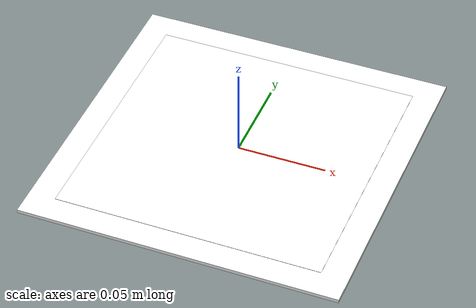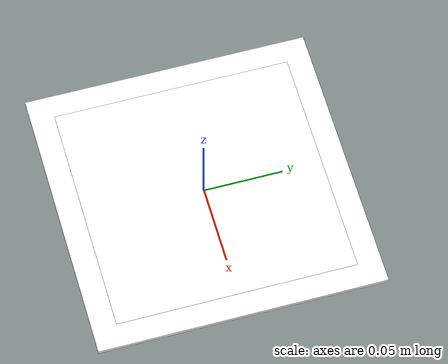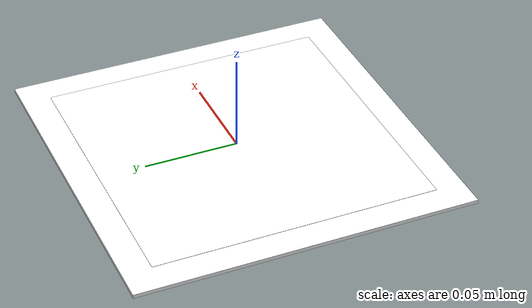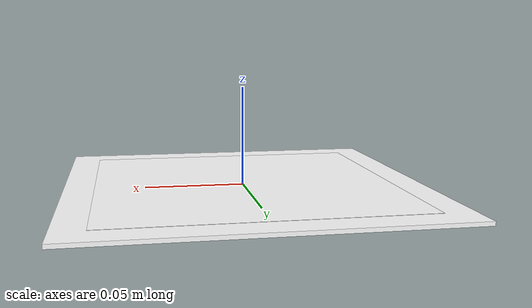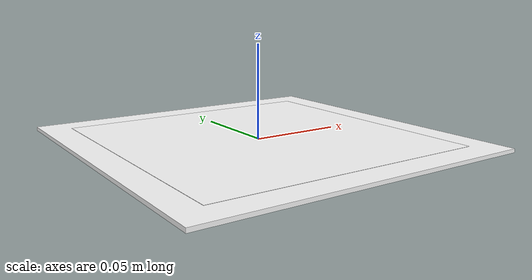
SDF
<?xml version="1.0"?>
<sdf version="1.9">
  <model name="aruco_marker_0">
    <static>true</static>
    <link name="marker_link">

      <!-- White backing/border -->
      <visual name="border_visual">
        <pose>0 0 0 0 0 0</pose>
        <geometry>
          <box>
            <size>0.18 0.18 0.002</size>
          </box>
        </geometry>
        <material>
          <ambient>1 1 1 1</ambient>
          <diffuse>1 1 1 1</diffuse>
        </material>
      </visual>

      <!-- ArUco marker texture on top -->
      <visual name="marker_visual">
        <pose>0 0 0.0011 0 0 0</pose>  <!-- Just above the white backing -->
        <geometry>
          <plane>
            <size>0.15 0.15</size>
          </plane>
        </geometry>
        <material>
          <ambient>1 1 1 1</ambient>
          <diffuse>1 1 1 1</diffuse>
          <pbr>
            <metal>
              <albedo_map>model://aruco_marker_0/materials/textures/aruco_marker_0.png</albedo_map>
              <metalness>0.0</metalness>
              <roughness>1.0</roughness>
            </metal>
          </pbr>
        </material>
      </visual>

      <!-- Collision -->
      <collision name="marker_collision">
        <pose>0 0 0 0 0 0</pose>
        <geometry>
          <box>
            <size>0.18 0.18 0.005</size>
          </box>
        </geometry>
      </collision>

    </link>
  </model>
</sdf>
